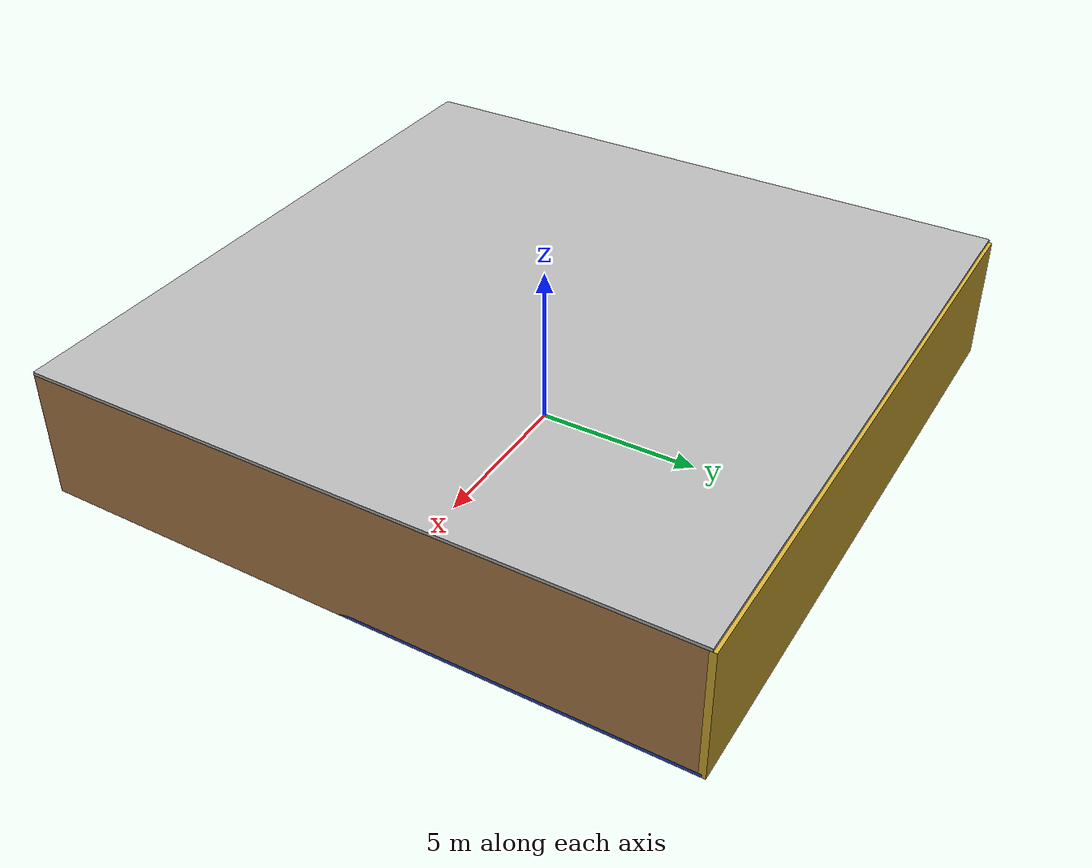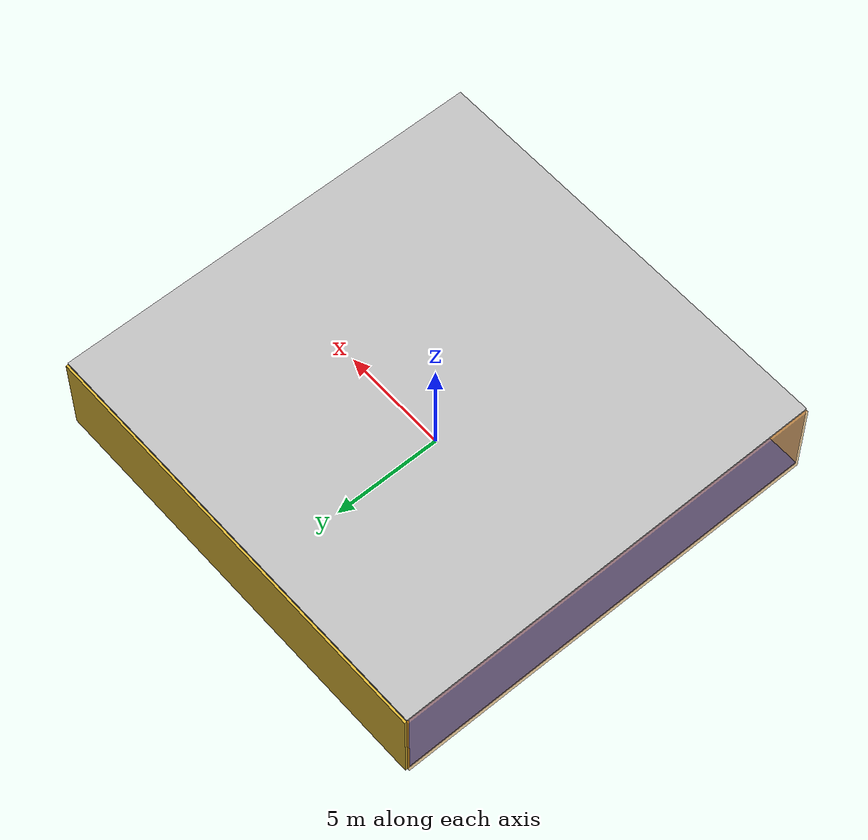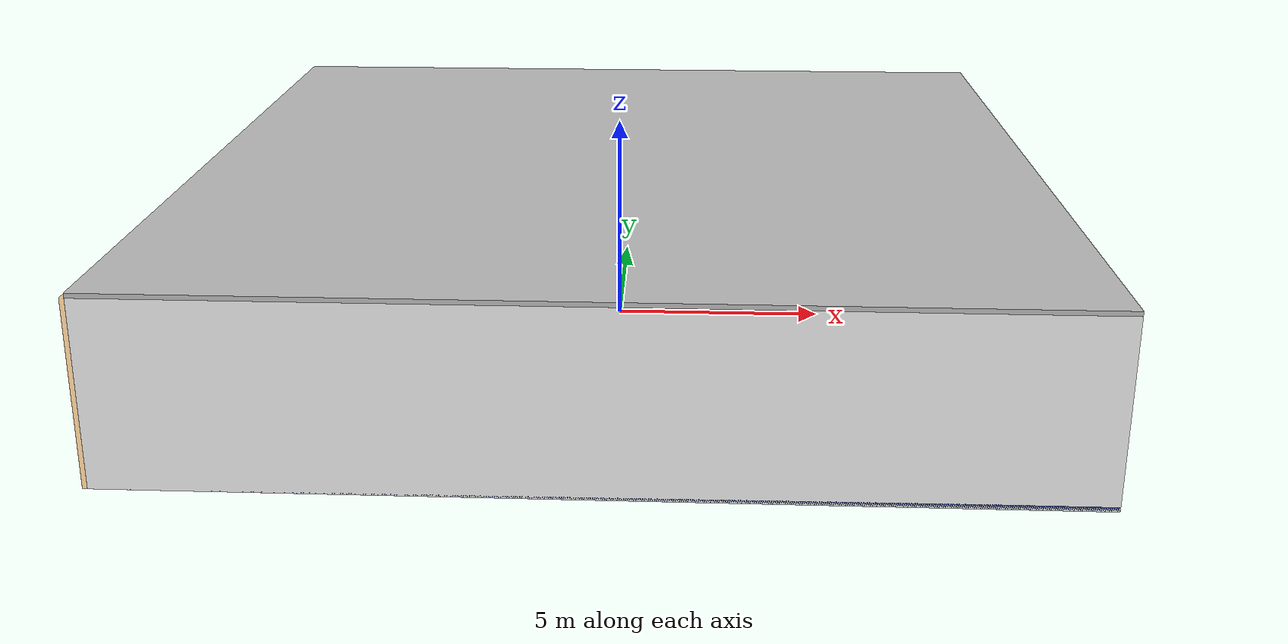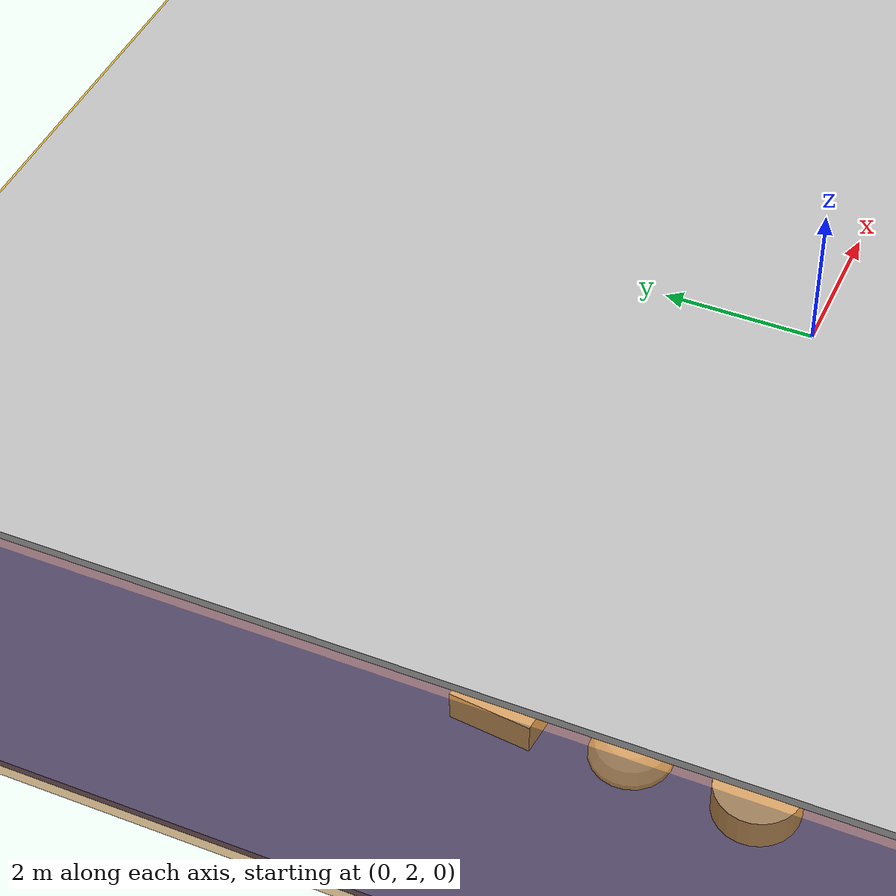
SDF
<sdf version="1.4">
 <world name="default">
  <physics type="ode">
   <max_step_size>0.001</max_step_size>
   <real_time_factor>1</real_time_factor>
   <real_time_update_rate>1000</real_time_update_rate>
   <gravity>0 0 -9.8</gravity>
  </physics>
  <scene><ambient>0.4 0.4 0.4 1</ambient><background>0.7 0.7 0.7 1</background><shadows>1</shadows></scene>
  <model name="Surrounding">
   <static>1</static>
   <link name="Ceiling">
    <collision name="Ceiling_Collision"><geometry><box><size>20 20 0.1</size></box></geometry></collision>
    <visual name="Ceiling_Visual">
     <geometry><box><size>20 20 0.1</size></box></geometry>
     <material>
      <script><uri>file://media/materials/scripts/gazebo.material</uri><name>Gazebo/Pioneer2Body</name></script>
     </material>
    </visual>
    <pose>0 0 4.05 0 0 0</pose>
   </link>
   <link name="Wall_South">
    <collision name="Wall_South_Collision">
     <geometry><box><size>20 0 4</size></box></geometry>
     <pose>0 0 2 0 -0 0</pose>
    </collision>
    <visual name="Wall_South_Visual">
     <pose>0 0 2 0 -0 0</pose>
     <geometry><box><size>20 0 4</size></box></geometry>
     <material>
      <script><uri>file://media/materials/scripts/gazebo.material</uri><name>Gazebo/WhiteGlow</name></script>
     </material>
    </visual>
    <velocity_decay><linear>0</linear><angular>0</angular></velocity_decay>
    <pose>0 -10 0 0 -0 0</pose>
   </link>
   <link name="Wall_East">
    <collision name="Wall_21_Collision">
     <geometry><box><size>20 0 4</size></box></geometry>
     <pose>0 0 2 0 -0 0</pose>
    </collision>
    <visual name="Wall_21_Visual">
     <pose>0 0 2 0 -0 0</pose>
     <geometry><box><size>20 0 4</size></box></geometry>
     <material>
      <script><uri>file://media/materials/scripts/gazebo.material</uri><name>Gazebo/WoodPallet</name></script>
     </material>
    </visual>
    <velocity_decay><linear>0</linear><angular>0</angular></velocity_decay>
    <pose>10 0 0 0 -0 1.5708</pose>
   </link>
   <link name="Wall_North">
    <collision name="Wall_22_Collision">
     <geometry><box><size>20 0.2 4</size></box></geometry>
     <pose>0 0 2 0 -0 0</pose>
    </collision>
    <visual name="Wall_22_Visual">
     <pose>0 0 2 0 -0 0</pose>
     <geometry><box><size>20 0.2 4</size></box></geometry>
     <material>
      <script><uri>file://media/materials/scripts/gazebo.material</uri><name>Gazebo/Gold</name></script>
     </material>
    </visual>
    <velocity_decay><linear>0</linear><angular>0</angular></velocity_decay>
    <pose>0 10 0 0 -0 0</pose>
   </link>
   <link name="Wall_West">
    <collision name="Wall_23_Collision">
     <geometry><box><size>20 0.2 4</size></box></geometry>
     <pose>0 0 2 0 -0 0</pose>
    </collision>
    <visual name="Wall_23_Visual">
     <pose>0 0 2 0 -0 0</pose>
     <geometry><box><size>20 0.2 4</size></box></geometry>
     <material>
      <script>
       <uri>file://media/materials/scripts/gazebo.material</uri>
       <name>Gazebo/OrangeTransparent</name>
      </script>
     </material>
    </visual>
    <velocity_decay><linear>0</linear><angular>0</angular></velocity_decay>
    <pose>-10 0 0 0 0 -1.5708</pose>
   </link>
   <link name="Ground_link">
    <collision name="collision">
     <pose>0 0 .05 0 -0 0</pose>
     <geometry><box><size>20 20 0.1</size></box></geometry>
    </collision>
    <visual name="visual">
     <pose>0 0 .05 0 -0 0</pose>
     <geometry><box><size>20 20 0.1</size></box></geometry>
     <material>
      <script><uri>file://media/materials/scripts/gazebo.material</uri><name>Gazebo/BlueLaser</name></script>
     </material>
    </visual>
   </link>
   <static>1</static>
  </model>
  <spherical_coordinates>
   <surface_model>EARTH_WGS84</surface_model>
   <latitude_deg>0</latitude_deg>
   <longitude_deg>0</longitude_deg>
   <elevation>0</elevation>
   <heading_deg>0</heading_deg>
  </spherical_coordinates>
  <light name="lightball_0" type="diffuse">
   <diffuse>0.8 0.8 0.8 1</diffuse>
   <specular>0.2 0.2 0.2 1</specular>
   <attenuation>
    <range>100</range>
    <constant>0.7</constant>
    <linear>0.01</linear>
    <quadratic>0.001</quadratic>
   </attenuation>
   <direction>-0.5 0.1 -0.9</direction>
   <pose>3.5058437803 2.23059284342 0.967088111266 0 0 0</pose>
  </light>
  <light name="lightball_1" type="diffuse">
   <diffuse>0.8 0.8 0.8 1</diffuse>
   <specular>0.2 0.2 0.2 1</specular>
   <attenuation>
    <range>100</range>
    <constant>0.7</constant>
    <linear>0.01</linear>
    <quadratic>0.001</quadratic>
   </attenuation>
   <direction>-0.5 0.1 -0.9</direction>
   <pose>-6.7150910446 -1.65839956125 3.5224415088 0 0 0</pose>
  </light>
  <light name="lightball_2" type="diffuse">
   <diffuse>0.8 0.8 0.8 1</diffuse>
   <specular>0.2 0.2 0.2 1</specular>
   <attenuation>
    <range>100</range>
    <constant>0.7</constant>
    <linear>0.01</linear>
    <quadratic>0.001</quadratic>
   </attenuation>
   <direction>-0.5 0.1 -0.9</direction>
   <pose>9.03532104143 7.14112897475 3.45408361666 0 0 0</pose>
  </light>
  <light name="lightball_3" type="diffuse">
   <diffuse>0.8 0.8 0.8 1</diffuse>
   <specular>0.2 0.2 0.2 1</specular>
   <attenuation>
    <range>100</range>
    <constant>0.7</constant>
    <linear>0.01</linear>
    <quadratic>0.001</quadratic>
   </attenuation>
   <direction>-0.5 0.1 -0.9</direction>
   <pose>0.435893252346 7.33976059546 3.74157579508 0 0 0</pose>
  </light>
  <light name="lightball_4" type="diffuse">
   <diffuse>0.8 0.8 0.8 1</diffuse>
   <specular>0.2 0.2 0.2 1</specular>
   <attenuation>
    <range>100</range>
    <constant>0.7</constant>
    <linear>0.01</linear>
    <quadratic>0.001</quadratic>
   </attenuation>
   <direction>-0.5 0.1 -0.9</direction>
   <pose>2.69783308211 -1.90051284752 0.928706979468 0 0 0</pose>
  </light>
  <light name="lightball_5" type="diffuse">
   <diffuse>0.8 0.8 0.8 1</diffuse>
   <specular>0.2 0.2 0.2 1</specular>
   <attenuation>
    <range>100</range>
    <constant>0.7</constant>
    <linear>0.01</linear>
    <quadratic>0.001</quadratic>
   </attenuation>
   <direction>-0.5 0.1 -0.9</direction>
   <pose>4.10451184199 3.26552442157 2.35965751335 0 0 0</pose>
  </light>
  <light name="lightball_6" type="diffuse">
   <diffuse>0.8 0.8 0.8 1</diffuse>
   <specular>0.2 0.2 0.2 1</specular>
   <attenuation>
    <range>100</range>
    <constant>0.7</constant>
    <linear>0.01</linear>
    <quadratic>0.001</quadratic>
   </attenuation>
   <direction>-0.5 0.1 -0.9</direction>
   <pose>7.48114247834 -9.41052703286 0.581538309873 0 0 0</pose>
  </light>
  <light name="lightball_7" type="diffuse">
   <diffuse>0.8 0.8 0.8 1</diffuse>
   <specular>0.2 0.2 0.2 1</specular>
   <attenuation>
    <range>100</range>
    <constant>0.7</constant>
    <linear>0.01</linear>
    <quadratic>0.001</quadratic>
   </attenuation>
   <direction>-0.5 0.1 -0.9</direction>
   <pose>-9.23713285703 7.47109390012 2.47408462955 0 0 0</pose>
  </light>
  <light name="lightball_8" type="diffuse">
   <diffuse>0.8 0.8 0.8 1</diffuse>
   <specular>0.2 0.2 0.2 1</specular>
   <attenuation>
    <range>100</range>
    <constant>0.7</constant>
    <linear>0.01</linear>
    <quadratic>0.001</quadratic>
   </attenuation>
   <direction>-0.5 0.1 -0.9</direction>
   <pose>6.42648937084 3.95153543895 1.96380452523 0 0 0</pose>
  </light>
  <light name="lightball_9" type="diffuse">
   <diffuse>0.8 0.8 0.8 1</diffuse>
   <specular>0.2 0.2 0.2 1</specular>
   <attenuation>
    <range>100</range>
    <constant>0.7</constant>
    <linear>0.01</linear>
    <quadratic>0.001</quadratic>
   </attenuation>
   <direction>-0.5 0.1 -0.9</direction>
   <pose>-9.32370558448 -7.3615634962 0.943574586038 0 0 0</pose>
  </light>
  <include><uri>model://cabinet</uri><pose>-6.70080397415 -4.53590761988 0 0 0 1.74117283773</pose></include>
  <include>
   <uri>model://textured_shapes</uri>
   <pose>-7.21801209496 1.71572167611 0 0 0 3.04286717386</pose>
  </include>
  <include>
   <uri>model://construction_cone</uri>
   <pose>-4.51336922234 -0.46368762072 0 0 0 2.74018189293</pose>
  </include>
  <include><uri>model://table</uri><pose>-3.72369545823 4.99783639772 0 0 0 0.0730191573048</pose></include>
  <include>
   <uri>model://construction_cone</uri>
   <pose>-3.55795212976 7.72221665397 0 0 0 2.44548045798</pose>
  </include>
  <include>
   <uri>model://construction_cone</uri>
   <pose>-1.14461959372 2.25565134929 0 0 0 1.8953512128</pose>
  </include>
 </world>
</sdf>

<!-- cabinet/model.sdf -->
<sdf version="1.5">
  <model name="cabinet">
    <static>true</static>
    <link name="cabinet_bottom_plate">
      <inertial>
        <pose>0 0 -1 0 0 0</pose>
        <inertia>
          <ixx>2.050000</ixx>
          <ixy>0</ixy>
          <ixz>0</ixz>
          <iyy>2.050000</iyy>
          <iyz>0</iyz>
          <izz>2.050000</izz>
        </inertia>
        <mass>25.000000</mass>
      </inertial>
      <collision name="cabinet_bottom_plate_geom">
        <pose>0 0 0.010000 0 0 0</pose>
        <geometry>
          <box>
            <size>0.450000 0.450000 0.020000</size>
          </box>
        </geometry>
      </collision>
      <visual name="cabinet_bottom_plate_geom_visual">
        <pose>0 0 0.010000 0 0 0</pose>
        <geometry>
          <box>
            <size>0.450000 0.450000 0.020000</size>
          </box>
        </geometry>
        <material>
          <script>
            <uri>model://media/materials/scripts/gazebo.material</uri>
            <name>Gazebo/Wood</name>
          </script>
        </material>
      </visual>
      <collision name="cabinet_bottom_plate_geom_cabinet_back_plate">
        <pose>0.235000 0 0.510000 0 0 0</pose>
        <geometry>
          <box>
            <size>0.020000 0.450000 1.020000</size>
          </box>
        </geometry>
      </collision>
      <visual name="cabinet_bottom_plate_geom_cabinet_back_plate_visual">
        <pose>0.235000 0 0.510000 0 0 0</pose>
        <geometry>
          <box>
            <size>0.020000 0.450000 1.020000</size>
          </box>
        </geometry>
        <material>
          <script>
            <uri>model://media/materials/scripts/gazebo.material</uri>
            <name>Gazebo/Wood</name>
          </script>
        </material>
      </visual>
      <collision name="cabinet_bottom_plate_geom_cabinet_left_plate">
        <pose>0 0.235000 0.510000 0 0 0</pose>
        <geometry>
          <box>
            <size>0.450000 0.020000 1.020000</size>
          </box>
        </geometry>
      </collision>
      <visual name="cabinet_bottom_plate_geom_cabinet_left_plate_visual">
        <pose>0 0.235000 0.510000 0 0 0</pose>
        <geometry>
          <box>
            <size>0.450000 0.020000 1.020000</size>
          </box>
        </geometry>
        <material>
          <script>
            <uri>model://media/materials/scripts/gazebo.material</uri>
            <name>Gazebo/Wood</name>
          </script>
        </material>
      </visual>
      <collision name="cabinet_bottom_plate_geom_cabinet_middle_plate">
        <pose>0 0 0.510000 0 0 0</pose>
        <geometry>
          <box>
            <size>0.450000 0.450000 0.020000</size>
          </box>
        </geometry>
      </collision>
      <visual name="cabinet_bottom_plate_geom_cabinet_middle_plate_visual">
        <pose>0 0 0.510000 0 0 0</pose>
        <geometry>
          <box>
            <size>0.450000 0.450000 0.020000</size>
          </box>
        </geometry>
        <material>
          <script>
            <uri>model://media/materials/scripts/gazebo.material</uri>
            <name>Gazebo/Wood</name>
          </script>
        </material>
      </visual>
      <collision name="cabinet_bottom_plate_geom_cabinet_right_plate">
        <pose>0 -0.235000 0.510000 0 0 0</pose>
        <geometry>
          <box>
            <size>0.450000 0.020000 1.020000</size>
          </box>
        </geometry>
      </collision>
      <visual name="cabinet_bottom_plate_geom_cabinet_right_plate_visual">
        <pose>0 -0.235000 0.510000 0 0 0</pose>
        <geometry>
          <box>
            <size>0.450000 0.020000 1.020000</size>
          </box>
        </geometry>
        <material>
          <script>
            <uri>model://media/materials/scripts/gazebo.material</uri>
            <name>Gazebo/Wood</name>
          </script>
        </material>
      </visual>
      <collision name="cabinet_bottom_plate_geom_cabinet_top_plate">
        <pose>0 0 1.010000 0 0 0</pose>
        <geometry>
          <box>
            <size>0.450000 0.450000 0.020000</size>
          </box>
        </geometry>
      </collision>
      <visual name="cabinet_bottom_plate_geom_cabinet_top_plate_visual">
        <pose>0 0 1.010000 0 0 0</pose>
        <geometry>
          <box>
            <size>0.450000 0.450000 0.020000</size>
          </box>
        </geometry>
        <material>
          <script>
            <uri>model://media/materials/scripts/gazebo.material</uri>
            <name>Gazebo/Wood</name>
          </script>
        </material>
      </visual>
    </link>
  </model>
</sdf>

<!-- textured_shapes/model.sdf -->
<sdf version="1.6">
  <model name="textured_shapes">
    <pose>0 0 0.5 0 0 0</pose>
    <link name="box">
      <pose>0 -1.5 0 0 0 0</pose>
      <collision name="collision">
        <geometry>
          <box>
            <size>1 1 1</size>
          </box>
        </geometry>
      </collision>
      <visual name="visual">
        <geometry>
          <box>
            <size>1 1 1</size>
          </box>
        </geometry>
        <material>
          <script>
            <uri>model://../model_source/models/textured_shapes/materials/scripts</uri>
            <uri>model://../model_source/models/textured_shapes/materials/textures</uri>
            <name>TexturedShape/Squares</name>
          </script>
        </material>
      </visual>
    </link>
    <link name="sphere">
      <collision name="collision">
        <geometry>
          <sphere>
            <radius>0.5</radius>
          </sphere>
        </geometry>
      </collision>
      <visual name="visual">
        <geometry>
          <sphere>
            <radius>0.5</radius>
          </sphere>
        </geometry>
        <material>
          <script>
            <uri>model://../model_source/models/textured_shapes/materials/scripts</uri>
            <uri>model://../model_source/models/textured_shapes/materials/textures</uri>
            <name>TexturedShape/Squares</name>
          </script>
        </material>
      </visual>
    </link>
    <link name="cylinder">
      <pose>0 1.5 0 0 0 0</pose>
      <collision name="collision">
        <geometry>
          <cylinder>
            <radius>0.5</radius>
            <length>1</length>
          </cylinder>
        </geometry>
      </collision>
      <visual name="visual">
        <geometry>
          <cylinder>
            <radius>0.5</radius>
            <length>1</length>
          </cylinder>
        </geometry>
        <material>
          <script>
            <uri>model://../model_source/models/textured_shapes/materials/scripts</uri>
            <uri>model://../model_source/models/textured_shapes/materials/textures</uri>
            <name>TexturedShape/Squares</name>
          </script>
        </material>
      </visual>
    </link>
  </model>
</sdf>

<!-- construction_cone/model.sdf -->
<sdf version="1.5">
  <model name="Construction Cone">
    <link name="link">
      <collision name="collision">
        <geometry>
          <mesh>
            <scale>10 10 10</scale>
            <uri>file://isr-testbed/construction_cone/meshes/construction_cone.dae</uri>
          </mesh>
        </geometry>
      </collision>
      <visual name="visual">
        <geometry>
          <mesh>
            <scale>10 10 10</scale>
            <uri>file://isr-testbed/construction_cone/meshes/construction_cone.dae</uri>
          </mesh>
        </geometry>
      </visual>
    </link>
  </model>
</sdf>

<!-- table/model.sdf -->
<sdf version="1.5">
  <model name="table">
    <static>true</static>
    <link name="link">
      <collision name="surface">
        <pose>0 0 1.0 0 0 0</pose>
        <geometry>
          <box>
            <size>1.5 0.8 0.03</size>
          </box>
        </geometry>
        <surface>
          <friction>
            <ode>
              <mu>0.6</mu>
              <mu2>0.6</mu2>
            </ode>
          </friction>
        </surface>
      </collision>
      <visual name="visual1">
        <pose>0 0 1.0 0 0 0</pose>
        <geometry>
          <box>
            <size>1.5 0.8 0.03</size>
          </box>
        </geometry>
        <material>
          <script>
            <uri>model://media/materials/scripts/gazebo.material</uri>
            <name>Gazebo/Wood</name>
          </script>
        </material>
      </visual>
      <collision name="front_left_leg">
        <pose>0.68 0.38 0.5 0 0 0</pose>
        <geometry>
          <cylinder>
            <radius>0.02</radius>
            <length>1.0</length>
          </cylinder>
        </geometry>
      </collision>
      <visual name="front_left_leg">
        <pose>0.68 0.38 0.5 0 0 0</pose>
        <geometry>
          <cylinder>
            <radius>0.02</radius>
            <length>1.0</length>
          </cylinder>
        </geometry>
        <material>
          <script>
            <uri>model://media/materials/scripts/gazebo.material</uri>
            <name>Gazebo/Grey</name>
          </script>
        </material>
      </visual>
      <collision name="front_right_leg">
        <pose>0.68 -0.38 0.5 0 0 0</pose>
        <geometry>
          <cylinder>
            <radius>0.02</radius>
            <length>1.0</length>
          </cylinder>
        </geometry>
      </collision>
      <visual name="front_right_leg">
        <pose>0.68 -0.38 0.5 0 0 0</pose>
        <geometry>
          <cylinder>
            <radius>0.02</radius>
            <length>1.0</length>
          </cylinder>
        </geometry>
        <material>
          <script>
            <uri>model://media/materials/scripts/gazebo.material</uri>
            <name>Gazebo/Grey</name>
          </script>
        </material>
      </visual>
      <collision name="back_right_leg">
        <pose>-0.68 -0.38 0.5 0 0 0</pose>
        <geometry>
          <cylinder>
            <radius>0.02</radius>
            <length>1.0</length>
          </cylinder>
        </geometry>
      </collision>
      <visual name="back_right_leg">
        <pose>-0.68 -0.38 0.5 0 0 0</pose>
        <geometry>
          <cylinder>
            <radius>0.02</radius>
            <length>1.0</length>
          </cylinder>
        </geometry>
        <material>
          <script>
            <uri>model://media/materials/scripts/gazebo.material</uri>
            <name>Gazebo/Grey</name>
          </script>
        </material>
      </visual>
      <collision name="back_left_leg">
        <pose>-0.68 0.38 0.5 0 0 0</pose>
        <geometry>
          <cylinder>
            <radius>0.02</radius>
            <length>1.0</length>
          </cylinder>
        </geometry>
      </collision>
      <visual name="back_left_leg">
        <pose>-0.68 0.38 0.5 0 0 0</pose>
        <geometry>
          <cylinder>
            <radius>0.02</radius>
            <length>1.0</length>
          </cylinder>
        </geometry>
        <material>
          <script>
            <uri>model://media/materials/scripts/gazebo.material</uri>
            <name>Gazebo/Grey</name>
          </script>
        </material>
      </visual>
    </link>
  </model>
</sdf>
